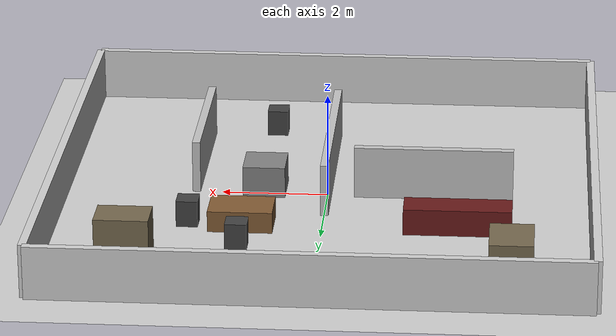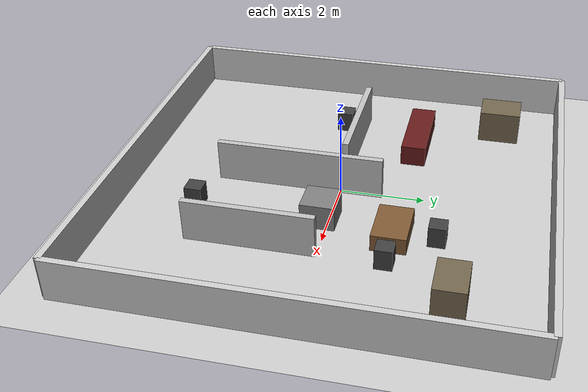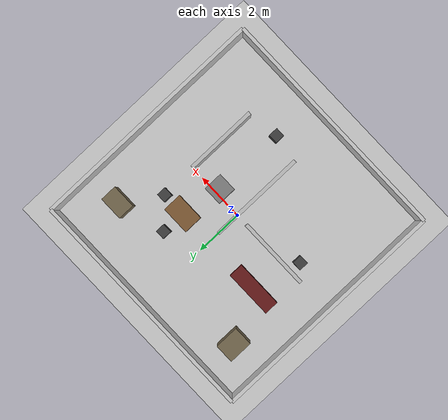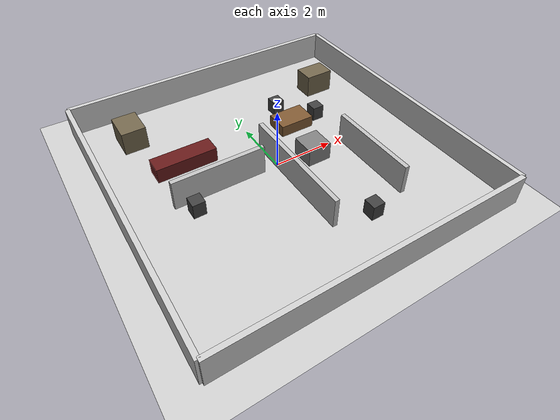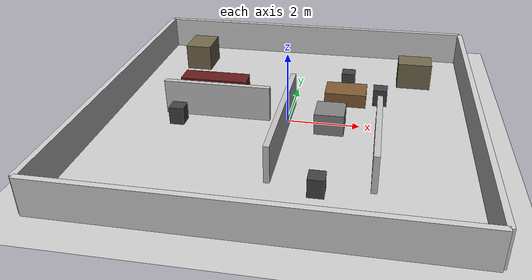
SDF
<?xml version="1.0" ?>
<sdf version="1.6">
  <world name="swarm_indoor_world">
    <include>
      <uri>model://ground_plane</uri>
    </include>

    <include>
      <uri>model://sun</uri>
    </include>

    <scene>
      <shadows>false</shadows>
    </scene>

    <physics type="ode">
      <real_time_update_rate>250.0</real_time_update_rate>
      <max_step_size>0.004</max_step_size>
      <real_time_factor>1</real_time_factor>
    </physics>

    <!-- Outer walls -->
    <model name="north_wall">
      <static>true</static>
      <pose>0 5 0.5 0 0 0</pose>
      <link name="link">
        <collision name="collision">
          <geometry><box><size>10.0 0.15 1.0</size></box></geometry>
        </collision>
        <visual name="visual">
          <geometry><box><size>10.0 0.15 1.0</size></box></geometry>
          <material><ambient>0.8 0.8 0.8 1</ambient><diffuse>0.8 0.8 0.8 1</diffuse></material>
        </visual>
      </link>
    </model>

    <model name="south_wall">
      <static>true</static>
      <pose>0 -5 0.5 0 0 0</pose>
      <link name="link">
        <collision name="collision">
          <geometry><box><size>10.0 0.15 1.0</size></box></geometry>
        </collision>
        <visual name="visual">
          <geometry><box><size>10.0 0.15 1.0</size></box></geometry>
          <material><ambient>0.8 0.8 0.8 1</ambient><diffuse>0.8 0.8 0.8 1</diffuse></material>
        </visual>
      </link>
    </model>

    <model name="east_wall">
      <static>true</static>
      <pose>5 0 0.5 0 0 0</pose>
      <link name="link">
        <collision name="collision">
          <geometry><box><size>0.15 10.0 1.0</size></box></geometry>
        </collision>
        <visual name="visual">
          <geometry><box><size>0.15 10.0 1.0</size></box></geometry>
          <material><ambient>0.8 0.8 0.8 1</ambient><diffuse>0.8 0.8 0.8 1</diffuse></material>
        </visual>
      </link>
    </model>

    <model name="west_wall">
      <static>true</static>
      <pose>-5 0 0.5 0 0 0</pose>
      <link name="link">
        <collision name="collision">
          <geometry><box><size>0.15 10.0 1.0</size></box></geometry>
        </collision>
        <visual name="visual">
          <geometry><box><size>0.15 10.0 1.0</size></box></geometry>
          <material><ambient>0.8 0.8 0.8 1</ambient><diffuse>0.8 0.8 0.8 1</diffuse></material>
        </visual>
      </link>
    </model>

    <!-- Internal partitions -->
    <model name="partition1">
      <static>true</static>
      <pose>0.0 -1.0 0.5 0 0 0</pose>
      <link name="link">
        <collision name="collision">
          <geometry><box><size>0.15 4.0 1.0</size></box></geometry>
        </collision>
        <visual name="visual">
          <geometry><box><size>0.15 4.0 1.0</size></box></geometry>
          <material><ambient>0.75 0.75 0.75 1</ambient><diffuse>0.75 0.75 0.75 1</diffuse></material>
        </visual>
      </link>
    </model>

    <model name="partition2">
      <static>true</static>
      <pose>-2.0 0.0 0.5 0 0 0</pose>
      <link name="link">
        <collision name="collision">
          <geometry><box><size>3.0 0.15 1.0</size></box></geometry>
        </collision>
        <visual name="visual">
          <geometry><box><size>3.0 0.15 1.0</size></box></geometry>
          <material><ambient>0.75 0.75 0.75 1</ambient><diffuse>0.75 0.75 0.75 1</diffuse></material>
        </visual>
      </link>
    </model>

    <model name="partition3">
      <static>true</static>
      <pose>2.5 -1.5 0.5 0 0 0</pose>
      <link name="link">
        <collision name="collision">
          <geometry><box><size>0.15 3.0 1.0</size></box></geometry>
        </collision>
        <visual name="visual">
          <geometry><box><size>0.15 3.0 1.0</size></box></geometry>
          <material><ambient>0.75 0.75 0.75 1</ambient><diffuse>0.75 0.75 0.75 1</diffuse></material>
        </visual>
      </link>
    </model>

    <!-- Furniture and obstacles -->
    <model name="sofa">
      <static>true</static>
      <pose>-2.5 1.5 0.25 0 0 0</pose>
      <link name="link">
        <collision name="collision">
          <geometry><box><size>2.0 0.6 0.5</size></box></geometry>
        </collision>
        <visual name="visual">
          <geometry><box><size>2.0 0.6 0.5</size></box></geometry>
          <material><ambient>0.4 0.1 0.1 1</ambient><diffuse>0.4 0.1 0.1 1</diffuse></material>
        </visual>
      </link>
    </model>

    <model name="table">
      <static>true</static>
      <pose>1.5 1.5 0.2 0 0 0</pose>
      <link name="link">
        <collision name="collision">
          <geometry><box><size>1.2 0.8 0.4</size></box></geometry>
        </collision>
        <visual name="visual">
          <geometry><box><size>1.2 0.8 0.4</size></box></geometry>
          <material><ambient>0.5 0.35 0.2 1</ambient><diffuse>0.5 0.35 0.2 1</diffuse></material>
        </visual>
      </link>
    </model>

    <model name="chair1">
      <static>true</static>
      <pose>2.5 1.5 0.25 0 0 0</pose>
      <link name="link">
        <collision name="collision"><geometry><box><size>0.4 0.4 0.5</size></box></geometry></collision>
        <visual name="visual">
          <geometry><box><size>0.4 0.4 0.5</size></box></geometry>
          <material><ambient>0.25 0.25 0.25 1</ambient><diffuse>0.25 0.25 0.25 1</diffuse></material>
        </visual>
      </link>
    </model>

    <model name="chair2">
      <static>true</static>
      <pose>1.5 2.5 0.25 0 0 0</pose>
      <link name="link">
        <collision name="collision"><geometry><box><size>0.4 0.4 0.5</size></box></geometry></collision>
        <visual name="visual">
          <geometry><box><size>0.4 0.4 0.5</size></box></geometry>
          <material><ambient>0.25 0.25 0.25 1</ambient><diffuse>0.25 0.25 0.25 1</diffuse></material>
        </visual>
      </link>
    </model>

    <model name="chair3">
      <static>true</static>
      <pose>-3.0 -0.5 0.25 0 0 0</pose>
      <link name="link">
        <collision name="collision"><geometry><box><size>0.4 0.4 0.5</size></box></geometry></collision>
        <visual name="visual">
          <geometry><box><size>0.4 0.4 0.5</size></box></geometry>
          <material><ambient>0.25 0.25 0.25 1</ambient><diffuse>0.25 0.25 0.25 1</diffuse></material>
        </visual>
      </link>
    </model>

    <model name="chair4">
      <static>true</static>
      <pose>1.2 -3.2 0.25 0 0 0</pose>
      <link name="link">
        <collision name="collision"><geometry><box><size>0.4 0.4 0.5</size></box></geometry></collision>
        <visual name="visual">
          <geometry><box><size>0.4 0.4 0.5</size></box></geometry>
          <material><ambient>0.25 0.25 0.25 1</ambient><diffuse>0.25 0.25 0.25 1</diffuse></material>
        </visual>
      </link>
    </model>

    <model name="box1">
      <static>true</static>
      <pose>-3.5 3.5 0.4 0 0 0</pose>
      <link name="link">
        <collision name="collision"><geometry><box><size>0.8 1.0 0.8</size></box></geometry></collision>
        <visual name="visual">
          <geometry><box><size>0.8 1.0 0.8</size></box></geometry>
          <material><ambient>0.45 0.4 0.3 1</ambient><diffuse>0.45 0.4 0.3 1</diffuse></material>
        </visual>
      </link>
    </model>

    <model name="box2">
      <static>true</static>
      <pose>3.5 3.0 0.4 0 0 0</pose>
      <link name="link">
        <collision name="collision"><geometry><box><size>1.0 0.7 0.8</size></box></geometry></collision>
        <visual name="visual">
          <geometry><box><size>1.0 0.7 0.8</size></box></geometry>
          <material><ambient>0.45 0.4 0.3 1</ambient><diffuse>0.45 0.4 0.3 1</diffuse></material>
        </visual>
      </link>
    </model>

    <model name="box3">
      <static>true</static>
      <pose>1.2 -0.2 0.3 0 0 0</pose>
      <link name="link">
        <collision name="collision"><geometry><box><size>0.8 0.8 0.6</size></box></geometry></collision>
        <visual name="visual">
          <geometry><box><size>0.8 0.8 0.6</size></box></geometry>
          <material><ambient>0.5 0.5 0.5 1</ambient><diffuse>0.5 0.5 0.5 1</diffuse></material>
        </visual>
      </link>
    </model>

  </world>
</sdf>
